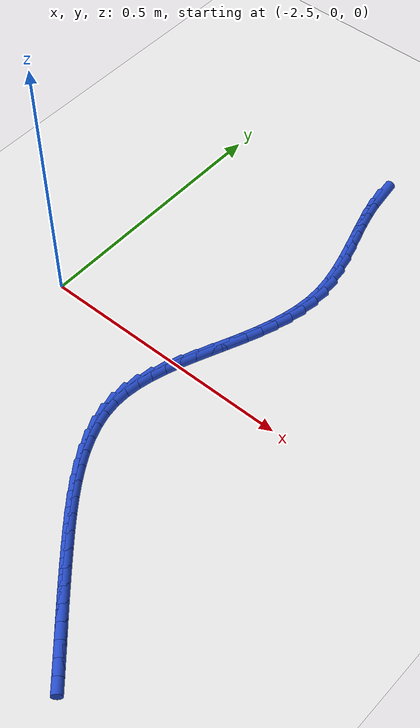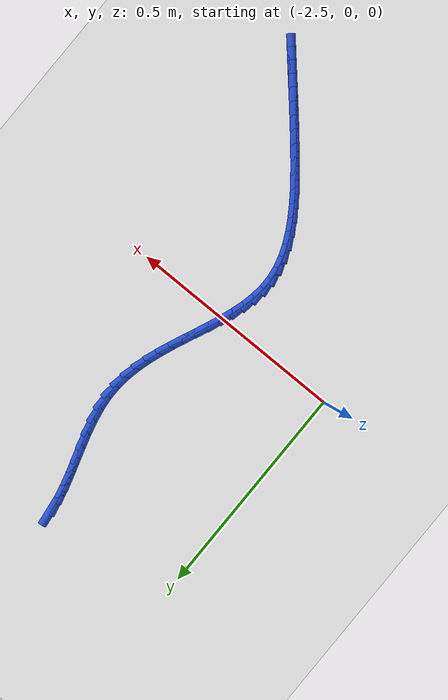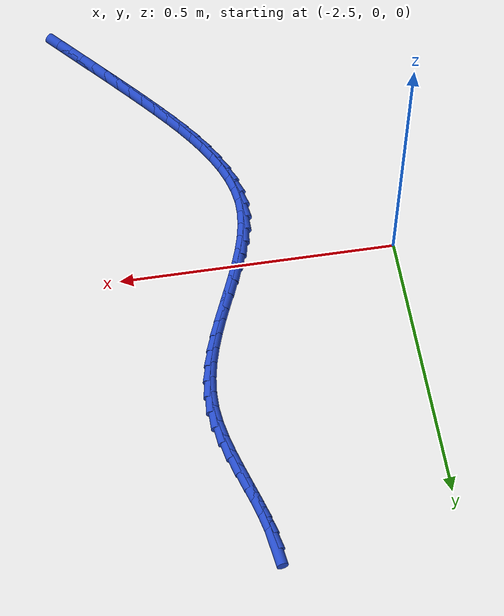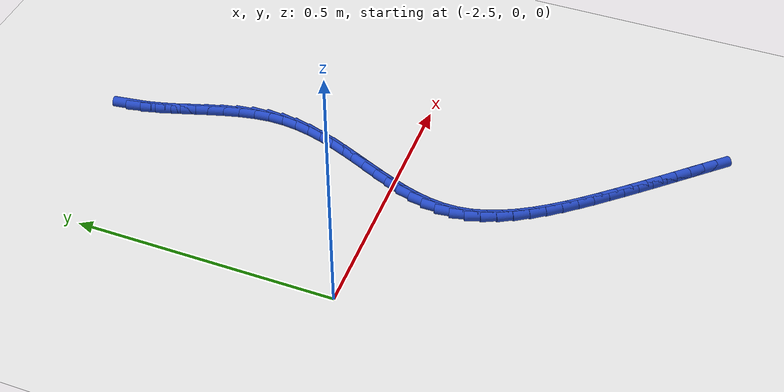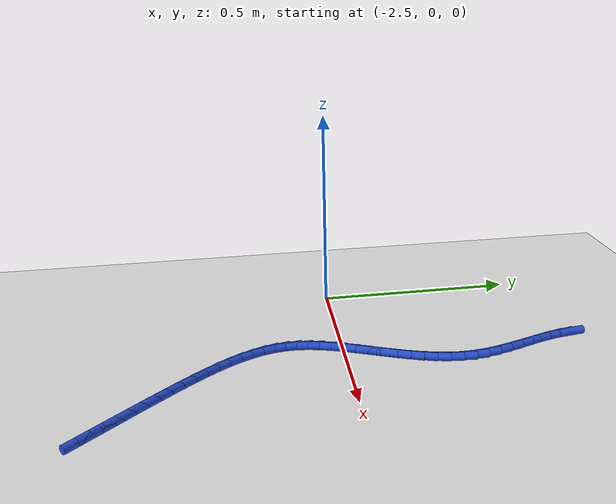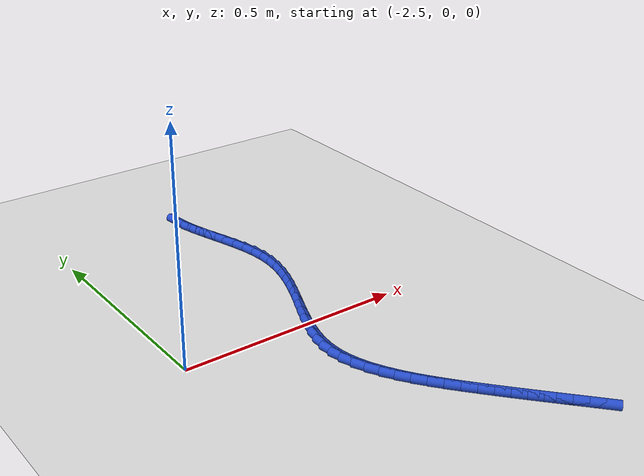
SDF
<sdf version="1.6">
 <world name="default">
  <model name="ground_plane">
   <static>1</static>
   <link name="link">
    <collision name="collision">
     <geometry><plane><normal>0 0 1</normal><size>100 100</size></plane></geometry>
     <surface><friction><ode><mu>100</mu><mu2>50</mu2></ode></friction></surface>
    </collision>
    <visual name="visual">
     <cast_shadows>0</cast_shadows>
     <geometry><plane><normal>0 0 1</normal><size>100 100</size></plane></geometry>
     <material>
      <script><uri>file://media/materials/scripts/gazebo.material</uri><name>Gazebo/WhiteGlow</name></script>
     </material>
    </visual>
   </link>
  </model>
  <model name="line">
   <link name="link_104">
    <pose>-2.18953964699462 0.555353156345312 0.01 0 1.57 -1.4330937298727155</pose>
    <collision name="collision">
     <geometry><cylinder><radius>0.01</radius><length>0.08</length></cylinder></geometry>
    </collision>
    <visual name="visual">
     <material>
      <script><name>Gazebo/Blue</name><uri>file://media/materials/scripts/gazebo.material</uri></script>
     </material>
     <geometry><cylinder><radius>0.01</radius><length>0.08</length></cylinder></geometry>
    </visual>
   </link>
   <link name="link_105">
    <pose>-2.1857479616895668 0.5279920966939263 0.01 0 1.57 -1.3516431694567974</pose>
    <collision name="collision">
     <geometry><cylinder><radius>0.01</radius><length>0.08</length></cylinder></geometry>
    </collision>
    <visual name="visual">
     <material>
      <script><name>Gazebo/Blue</name><uri>file://media/materials/scripts/gazebo.material</uri></script>
     </material>
     <geometry><cylinder><radius>0.01</radius><length>0.08</length></cylinder></geometry>
    </visual>
   </link>
   <link name="link_106">
    <pose>-2.179435182219779 0.4996494031622362 0.01 0 1.57 -1.300092998057552</pose>
    <collision name="collision">
     <geometry><cylinder><radius>0.01</radius><length>0.08</length></cylinder></geometry>
    </collision>
    <visual name="visual">
     <material>
      <script><name>Gazebo/Blue</name><uri>file://media/materials/scripts/gazebo.material</uri></script>
     </material>
     <geometry><cylinder><radius>0.01</radius><length>0.08</length></cylinder></geometry>
    </visual>
   </link>
   <link name="link_107">
    <pose>-2.1713436942660382 0.47049251488050314 0.01 0 1.57 -1.2736018514328973</pose>
    <collision name="collision">
     <geometry><cylinder><radius>0.01</radius><length>0.08</length></cylinder></geometry>
    </collision>
    <visual name="visual">
     <material>
      <script><name>Gazebo/Blue</name><uri>file://media/materials/scripts/gazebo.material</uri></script>
     </material>
     <geometry><cylinder><radius>0.01</radius><length>0.08</length></cylinder></geometry>
    </visual>
   </link>
   <link name="link_108">
    <pose>-2.1622158835091243 0.44068887097898773 0.01 0 1.57 -1.2691657666384752</pose>
    <collision name="collision">
     <geometry><cylinder><radius>0.01</radius><length>0.08</length></cylinder></geometry>
    </collision>
    <visual name="visual">
     <material>
      <script><name>Gazebo/Blue</name><uri>file://media/materials/scripts/gazebo.material</uri></script>
     </material>
     <geometry><cylinder><radius>0.01</radius><length>0.08</length></cylinder></geometry>
    </visual>
   </link>
   <link name="link_109">
    <pose>-2.1527941356298195 0.41040591058795084 0.01 0 1.57 -1.285502613085607</pose>
    <collision name="collision">
     <geometry><cylinder><radius>0.01</radius><length>0.08</length></cylinder></geometry>
    </collision>
    <visual name="visual">
     <material>
      <script><name>Gazebo/Blue</name><uri>file://media/materials/scripts/gazebo.material</uri></script>
     </material>
     <geometry><cylinder><radius>0.01</radius><length>0.08</length></cylinder></geometry>
    </visual>
   </link>
   <link name="link_110">
    <pose>-2.143820836308904 0.3798110728376534 0.01 0 1.57 -1.3228301734333061</pose>
    <collision name="collision">
     <geometry><cylinder><radius>0.01</radius><length>0.08</length></cylinder></geometry>
    </collision>
    <visual name="visual">
     <material>
      <script><name>Gazebo/Blue</name><uri>file://media/materials/scripts/gazebo.material</uri></script>
     </material>
     <geometry><cylinder><radius>0.01</radius><length>0.08</length></cylinder></geometry>
    </visual>
   </link>
   <link name="link_111">
    <pose>-2.1360383712271602 0.3490717968583561 0.01 0 1.57 -1.382621126277424</pose>
    <collision name="collision">
     <geometry><cylinder><radius>0.01</radius><length>0.08</length></cylinder></geometry>
    </collision>
    <visual name="visual">
     <material>
      <script><name>Gazebo/Blue</name><uri>file://media/materials/scripts/gazebo.material</uri></script>
     </material>
     <geometry><cylinder><radius>0.01</radius><length>0.08</length></cylinder></geometry>
    </visual>
   </link>
   <link name="link_112">
    <pose>-2.1301891260653676 0.31835552178031973 0.01 0 1.57 -1.467202807924232</pose>
    <collision name="collision">
     <geometry><cylinder><radius>0.01</radius><length>0.08</length></cylinder></geometry>
    </collision>
    <visual name="visual">
     <material>
      <script><name>Gazebo/Blue</name><uri>file://media/materials/scripts/gazebo.material</uri></script>
     </material>
     <geometry><cylinder><radius>0.01</radius><length>0.08</length></cylinder></geometry>
    </visual>
   </link>
   <link name="link_113">
    <pose>-2.127015486504308 0.2878296867338051 0.01 0 1.57 1.565953639800202</pose>
    <collision name="collision">
     <geometry><cylinder><radius>0.01</radius><length>0.08</length></cylinder></geometry>
    </collision>
    <visual name="visual">
     <material>
      <script><name>Gazebo/Blue</name><uri>file://media/materials/scripts/gazebo.material</uri></script>
     </material>
     <geometry><cylinder><radius>0.01</radius><length>0.08</length></cylinder></geometry>
    </visual>
   </link>
   <link name="link_114">
    <pose>-2.1271616535413846 0.2576468781779079 0.01 0 1.57 1.4592450153176963</pose>
    <collision name="collision">
     <geometry><cylinder><radius>0.01</radius><length>0.08</length></cylinder></geometry>
    </collision>
    <visual name="visual">
     <material>
      <script><name>Gazebo/Blue</name><uri>file://media/materials/scripts/gazebo.material</uri></script>
     </material>
     <geometry><cylinder><radius>0.01</radius><length>0.08</length></cylinder></geometry>
    </visual>
   </link>
   <link name="link_115">
    <pose>-2.1305001798321563 0.22784295317277511 0.01 0 1.57 1.368511954496435</pose>
    <collision name="collision">
     <geometry><cylinder><radius>0.01</radius><length>0.08</length></cylinder></geometry>
    </collision>
    <visual name="visual">
     <material>
      <script><name>Gazebo/Blue</name><uri>file://media/materials/scripts/gazebo.material</uri></script>
     </material>
     <geometry><cylinder><radius>0.01</radius><length>0.08</length></cylinder></geometry>
    </visual>
   </link>
   <link name="link_116">
    <pose>-2.13653890452185 0.19839859754764375 0.01 0 1.57 1.2947520355999744</pose>
    <collision name="collision">
     <geometry><cylinder><radius>0.01</radius><length>0.08</length></cylinder></geometry>
    </collision>
    <visual name="visual">
     <material>
      <script><name>Gazebo/Blue</name><uri>file://media/materials/scripts/gazebo.material</uri></script>
     </material>
     <geometry><cylinder><radius>0.01</radius><length>0.08</length></cylinder></geometry>
    </visual>
   </link>
   <link name="link_117">
    <pose>-2.144783501322604 0.16929416956064217 0.01 0 1.57 1.2377877920862572</pose>
    <collision name="collision">
     <geometry><cylinder><radius>0.01</radius><length>0.08</length></cylinder></geometry>
    </collision>
    <visual name="visual">
     <material>
      <script><name>Gazebo/Blue</name><uri>file://media/materials/scripts/gazebo.material</uri></script>
     </material>
     <geometry><cylinder><radius>0.01</radius><length>0.08</length></cylinder></geometry>
    </visual>
   </link>
   <link name="link_118">
    <pose>-2.15473964394656 0.14051002746989874 0.01 0 1.57 1.1969671807313074</pose>
    <collision name="collision">
     <geometry><cylinder><radius>0.01</radius><length>0.08</length></cylinder></geometry>
    </collision>
    <visual name="visual">
     <material>
      <script><name>Gazebo/Blue</name><uri>file://media/materials/scripts/gazebo.material</uri></script>
     </material>
     <geometry><cylinder><radius>0.01</radius><length>0.08</length></cylinder></geometry>
    </visual>
   </link>
   <link name="link_119">
    <pose>-2.1659130061058556 0.11202652953354188 0.01 0 1.57 1.1716258982946077</pose>
    <collision name="collision">
     <geometry><cylinder><radius>0.01</radius><length>0.08</length></cylinder></geometry>
    </collision>
    <visual name="visual">
     <material>
      <script><name>Gazebo/Blue</name><uri>file://media/materials/scripts/gazebo.material</uri></script>
     </material>
     <geometry><cylinder><radius>0.01</radius><length>0.08</length></cylinder></geometry>
    </visual>
   </link>
   <link name="link_120">
    <pose>-2.177809261512632 0.08382403400970041 0.01 0 1.57 1.1613764584741353</pose>
    <collision name="collision">
     <geometry><cylinder><radius>0.01</radius><length>0.08</length></cylinder></geometry>
    </collision>
    <visual name="visual">
     <material>
      <script><name>Gazebo/Blue</name><uri>file://media/materials/scripts/gazebo.material</uri></script>
     </material>
     <geometry><cylinder><radius>0.01</radius><length>0.08</length></cylinder></geometry>
    </visual>
   </link>
   <link name="link_121">
    <pose>-2.1899340838790278 0.055882899156501915 0.01 0 1.57 1.1662741110699868</pose>
    <collision name="collision">
     <geometry><cylinder><radius>0.01</radius><length>0.08</length></cylinder></geometry>
    </collision>
    <visual name="visual">
     <material>
      <script><name>Gazebo/Blue</name><uri>file://media/materials/scripts/gazebo.material</uri></script>
     </material>
     <geometry><cylinder><radius>0.01</radius><length>0.08</length></cylinder></geometry>
    </visual>
   </link>
   <link name="link_122">
    <pose>-2.2017931469171836 0.028183483232075163 0.01 0 1.57 1.1869048648588776</pose>
    <collision name="collision">
     <geometry><cylinder><radius>0.01</radius><length>0.08</length></cylinder></geometry>
    </collision>
    <visual name="visual">
     <material>
      <script><name>Gazebo/Blue</name><uri>file://media/materials/scripts/gazebo.material</uri></script>
     </material>
     <geometry><cylinder><radius>0.01</radius><length>0.08</length></cylinder></geometry>
    </visual>
   </link>
   <link name="link_123">
    <pose>-2.212892124339238 0.0007061444945485884 0.01 0 1.57 1.2244100777608553</pose>
    <collision name="collision">
     <geometry><cylinder><radius>0.01</radius><length>0.08</length></cylinder></geometry>
    </collision>
    <visual name="visual">
     <material>
      <script><name>Gazebo/Blue</name><uri>file://media/materials/scripts/gazebo.material</uri></script>
     </material>
     <geometry><cylinder><radius>0.01</radius><length>0.08</length></cylinder></geometry>
    </visual>
   </link>
   <link name="link_124">
    <pose>-2.222736689857332 -0.026568758797949482 0.01 0 1.57 1.2804169243919254</pose>
    <collision name="collision">
     <geometry><cylinder><radius>0.01</radius><length>0.08</length></cylinder></geometry>
    </collision>
    <visual name="visual">
     <material>
      <script><name>Gazebo/Blue</name><uri>file://media/materials/scripts/gazebo.material</uri></script>
     </material>
     <geometry><cylinder><radius>0.01</radius><length>0.08</length></cylinder></geometry>
    </visual>
   </link>
   <link name="link_125">
    <pose>-2.230832517183604 -0.05366086838729059 0.01 0 1.57 1.3567838104086645</pose>
    <collision name="collision">
     <geometry><cylinder><radius>0.01</radius><length>0.08</length></cylinder></geometry>
    </collision>
    <visual name="visual">
     <material>
      <script><name>Gazebo/Blue</name><uri>file://media/materials/scripts/gazebo.material</uri></script>
     </material>
     <geometry><cylinder><radius>0.01</radius><length>0.08</length></cylinder></geometry>
    </visual>
   </link>
   <link name="link_126">
    <pose>-2.236685280030194 -0.08058982601534637 0.01 0 1.57 1.4550081868793285</pose>
    <collision name="collision">
     <geometry><cylinder><radius>0.01</radius><length>0.08</length></cylinder></geometry>
    </collision>
    <visual name="visual">
     <material>
      <script><name>Gazebo/Blue</name><uri>file://media/materials/scripts/gazebo.material</uri></script>
     </material>
     <geometry><cylinder><radius>0.01</radius><length>0.08</length></cylinder></geometry>
    </visual>
   </link>
   <link name="link_127">
    <pose>-2.239800652109242 -0.10737527342398842 0.01 0 1.57 -1.5664325853163854</pose>
    <collision name="collision">
     <geometry><cylinder><radius>0.01</radius><length>0.08</length></cylinder></geometry>
    </collision>
    <visual name="visual">
     <material>
      <script><name>Gazebo/Blue</name><uri>file://media/materials/scripts/gazebo.material</uri></script>
     </material>
     <geometry><cylinder><radius>0.01</radius><length>0.08</length></cylinder></geometry>
    </visual>
   </link>
   <link name="link_128">
    <pose>-2.239684307132887 -0.13403685235508833 0.01 0 1.57 -1.43205897527535</pose>
    <collision name="collision">
     <geometry><cylinder><radius>0.01</radius><length>0.08</length></cylinder></geometry>
    </collision>
    <visual name="visual">
     <material>
      <script><name>Gazebo/Blue</name><uri>file://media/materials/scripts/gazebo.material</uri></script>
     </material>
     <geometry><cylinder><radius>0.01</radius><length>0.08</length></cylinder></geometry>
    </visual>
   </link>
   <link name="link_129">
    <pose>-2.2359773052187957 -0.16058476543207195 0.01 0 1.57 -1.3091763644204115</pose>
    <collision name="collision">
     <geometry><cylinder><radius>0.01</radius><length>0.08</length></cylinder></geometry>
    </collision>
    <visual name="visual">
     <material>
      <script><name>Gazebo/Blue</name><uri>file://media/materials/scripts/gazebo.material</uri></script>
     </material>
     <geometry><cylinder><radius>0.01</radius><length>0.08</length></cylinder></geometry>
    </visual>
   </link>
   <link name="link_130">
    <pose>-2.2289075771446965 -0.18698829875021594 0.01 0 1.57 -1.2048876187842192</pose>
    <collision name="collision">
     <geometry><cylinder><radius>0.01</radius><length>0.08</length></cylinder></geometry>
    </collision>
    <visual name="visual">
     <material>
      <script><name>Gazebo/Blue</name><uri>file://media/materials/scripts/gazebo.material</uri></script>
     </material>
     <geometry><cylinder><radius>0.01</radius><length>0.08</length></cylinder></geometry>
    </visual>
   </link>
   <link name="link_131">
    <pose>-2.218862035181093 -0.2132056542406584 0.01 0 1.57 -1.118299195072898</pose>
    <collision name="collision">
     <geometry><cylinder><radius>0.01</radius><length>0.08</length></cylinder></geometry>
    </collision>
    <visual name="visual">
     <material>
      <script><name>Gazebo/Blue</name><uri>file://media/materials/scripts/gazebo.material</uri></script>
     </material>
     <geometry><cylinder><radius>0.01</radius><length>0.08</length></cylinder></geometry>
    </visual>
   </link>
   <link name="link_132">
    <pose>-2.206227594419697 -0.23919503363784336 0.01 0 1.57 -1.0475707834559778</pose>
    <collision name="collision">
     <geometry><cylinder><radius>0.01</radius><length>0.08</length></cylinder></geometry>
    </collision>
    <visual name="visual">
     <material>
      <script><name>Gazebo/Blue</name><uri>file://media/materials/scripts/gazebo.material</uri></script>
     </material>
     <geometry><cylinder><radius>0.01</radius><length>0.08</length></cylinder></geometry>
    </visual>
   </link>
   <link name="link_133">
    <pose>-2.1913911699522215 -0.2649146386762146 0.01 0 1.57 -0.9906599768218889</pose>
    <collision name="collision">
     <geometry><cylinder><radius>0.01</radius><length>0.08</length></cylinder></geometry>
    </collision>
    <visual name="visual">
     <material>
      <script><name>Gazebo/Blue</name><uri>file://media/materials/scripts/gazebo.material</uri></script>
     </material>
     <geometry><cylinder><radius>0.01</radius><length>0.08</length></cylinder></geometry>
    </visual>
   </link>
   <link name="link_134">
    <pose>-2.174739676870378 -0.2903226710902161 0.01 0 1.57 -0.945715008304607</pose>
    <collision name="collision">
     <geometry><cylinder><radius>0.01</radius><length>0.08</length></cylinder></geometry>
    </collision>
    <visual name="visual">
     <material>
      <script><name>Gazebo/Blue</name><uri>file://media/materials/scripts/gazebo.material</uri></script>
     </material>
     <geometry><cylinder><radius>0.01</radius><length>0.08</length></cylinder></geometry>
    </visual>
   </link>
   <link name="link_135">
    <pose>-2.15666003026588 -0.31537733261429163 0.01 0 1.57 -0.9112385659389772</pose>
    <collision name="collision">
     <geometry><cylinder><radius>0.01</radius><length>0.08</length></cylinder></geometry>
    </collision>
    <visual name="visual">
     <material>
      <script><name>Gazebo/Blue</name><uri>file://media/materials/scripts/gazebo.material</uri></script>
     </material>
     <geometry><cylinder><radius>0.01</radius><length>0.08</length></cylinder></geometry>
    </visual>
   </link>
   <link name="link_136">
    <pose>-2.137539145230438 -0.34003682498288523 0.01 0 1.57 -0.8861365860407773</pose>
    <collision name="collision">
     <geometry><cylinder><radius>0.01</radius><length>0.08</length></cylinder></geometry>
    </collision>
    <visual name="visual">
     <material>
      <script><name>Gazebo/Blue</name><uri>file://media/materials/scripts/gazebo.material</uri></script>
     </material>
     <geometry><cylinder><radius>0.01</radius><length>0.08</length></cylinder></geometry>
    </visual>
   </link>
   <link name="link_137">
    <pose>-2.1177639368557655 -0.3642593499304409 0.01 0 1.57 -0.8697249519676433</pose>
    <collision name="collision">
     <geometry><cylinder><radius>0.01</radius><length>0.08</length></cylinder></geometry>
    </collision>
    <visual name="visual">
     <material>
      <script><name>Gazebo/Blue</name><uri>file://media/materials/scripts/gazebo.material</uri></script>
     </material>
     <geometry><cylinder><radius>0.01</radius><length>0.08</length></cylinder></geometry>
    </visual>
   </link>
   <link name="link_138">
    <pose>-2.0977213189515354 -0.3880031095442064 0.01 0 1.57 -0.8604385966841125</pose>
    <collision name="collision">
     <geometry><cylinder><radius>0.01</radius><length>0.08</length></cylinder></geometry>
    </collision>
    <visual name="visual">
     <material>
      <script><name>Gazebo/Blue</name><uri>file://media/materials/scripts/gazebo.material</uri></script>
     </material>
     <geometry><cylinder><radius>0.01</radius><length>0.08</length></cylinder></geometry>
    </visual>
   </link>
   <link name="link_139">
    <pose>-2.0777296354599506 -0.41124517567180496 0.01 0 1.57 -0.8535459146322414</pose>
    <collision name="collision">
     <geometry><cylinder><radius>0.01</radius><length>0.08</length></cylinder></geometry>
    </collision>
    <visual name="visual">
     <material>
      <script><name>Gazebo/Blue</name><uri>file://media/materials/scripts/gazebo.material</uri></script>
     </material>
     <geometry><cylinder><radius>0.01</radius><length>0.08</length></cylinder></geometry>
    </visual>
   </link>
   <link name="link_140">
    <pose>-2.0578544744081713 -0.43403217612947653 0.01 0 1.57 -0.8480342749444709</pose>
    <collision name="collision">
     <geometry><cylinder><radius>0.01</radius><length>0.08</length></cylinder></geometry>
    </collision>
    <visual name="visual">
     <material>
      <script><name>Gazebo/Blue</name><uri>file://media/materials/scripts/gazebo.material</uri></script>
     </material>
     <geometry><cylinder><radius>0.01</radius><length>0.08</length></cylinder></geometry>
    </visual>
   </link>
   <link name="link_141">
    <pose>-2.0381031995808065 -0.4564267614785158 0.01 0 1.57 -0.8439805701008429</pose>
    <collision name="collision">
     <geometry><cylinder><radius>0.01</radius><length>0.08</length></cylinder></geometry>
    </collision>
    <visual name="visual">
     <material>
      <script><name>Gazebo/Blue</name><uri>file://media/materials/scripts/gazebo.material</uri></script>
     </material>
     <geometry><cylinder><radius>0.01</radius><length>0.08</length></cylinder></geometry>
    </visual>
   </link>
   <link name="link_142">
    <pose>-2.0184831747624634 -0.4784915822802181 0.01 0 1.57 -0.8414523963946865</pose>
    <collision name="collision">
     <geometry><cylinder><radius>0.01</radius><length>0.08</length></cylinder></geometry>
    </collision>
    <visual name="visual">
     <material>
      <script><name>Gazebo/Blue</name><uri>file://media/materials/scripts/gazebo.material</uri></script>
     </material>
     <geometry><cylinder><radius>0.01</radius><length>0.08</length></cylinder></geometry>
    </visual>
   </link>
   <link name="link_143">
    <pose>-1.9990017637377493 -0.5002892890958781 0.01 0 1.57 -0.8405068067188636</pose>
    <collision name="collision">
     <geometry><cylinder><radius>0.01</radius><length>0.08</length></cylinder></geometry>
    </collision>
    <visual name="visual">
     <material>
      <script><name>Gazebo/Blue</name><uri>file://media/materials/scripts/gazebo.material</uri></script>
     </material>
     <geometry><cylinder><radius>0.01</radius><length>0.08</length></cylinder></geometry>
    </visual>
   </link>
   <link name="link_144">
    <pose>-1.9796663302912731 -0.5218825324867913 0.01 0 1.57 -0.8411891278806942</pose>
    <collision name="collision">
     <geometry><cylinder><radius>0.01</radius><length>0.08</length></cylinder></geometry>
    </collision>
    <visual name="visual">
     <material>
      <script><name>Gazebo/Blue</name><uri>file://media/materials/scripts/gazebo.material</uri></script>
     </material>
     <geometry><cylinder><radius>0.01</radius><length>0.08</length></cylinder></geometry>
    </visual>
   </link>
   <link name="link_145">
    <pose>-1.9604842382076426 -0.5433339630142516 0.01 0 1.57 -0.8435318577711298</pose>
    <collision name="collision">
     <geometry><cylinder><radius>0.01</radius><length>0.08</length></cylinder></geometry>
    </collision>
    <visual name="visual">
     <material>
      <script><name>Gazebo/Blue</name><uri>file://media/materials/scripts/gazebo.material</uri></script>
     </material>
     <geometry><cylinder><radius>0.01</radius><length>0.08</length></cylinder></geometry>
    </visual>
   </link>
  </model>
 </world>
</sdf>
